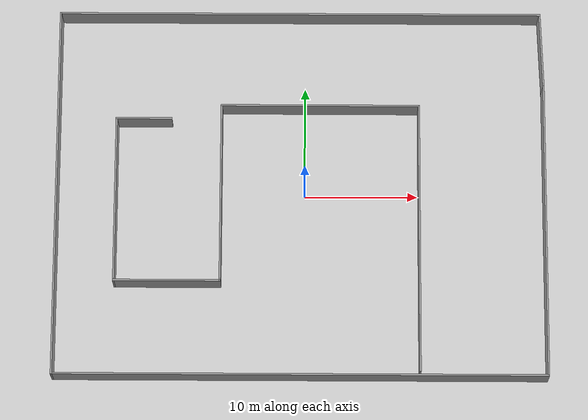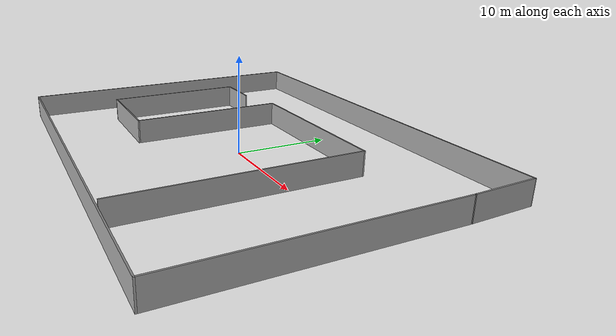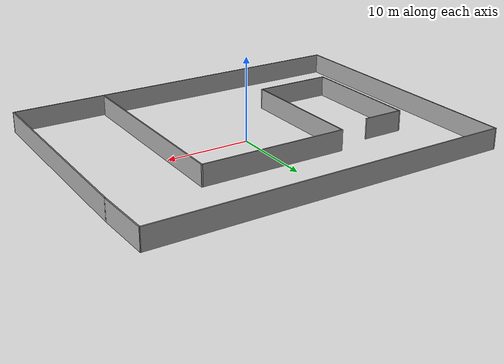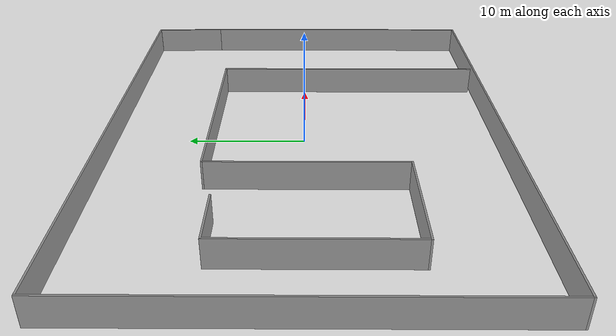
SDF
<?xml version='1.0'?>
<sdf version='1.6'>
  <model name='a5er_edit'>
    <pose frame=''>-0.366346 -0.117739 0 0 -0 0</pose>
    <link name='Wall_10'>
      <collision name='Wall_10_Collision'>
        <geometry>
          <box>
            <size>17.75 0.15 2.5</size>
          </box>
        </geometry>
        <pose frame=''>0 0 1.25 0 -0 0</pose>
      </collision>
      <visual name='Wall_10_Visual'>
        <pose frame=''>0 0 1.25 0 -0 0</pose>
        <geometry>
          <box>
            <size>17.75 0.15 2.5</size>
          </box>
        </geometry>
        <material>
          <script>
            <uri>file://media/materials/scripts/gazebo.material</uri>
            <name>Gazebo/Grey</name>
          </script>
          <ambient>1 1 1 1</ambient>
        </material>
        <meta>
          <layer>0</layer>
        </meta>
      </visual>
      <pose frame=''>1.7121 7.93096 0 0 -0 3.14159</pose>
    </link>
    <link name='Wall_11'>
      <collision name='Wall_11_Collision'>
        <geometry>
          <box>
            <size>16.25 0.15 2.5</size>
          </box>
        </geometry>
        <pose frame=''>0 0 1.25 0 -0 0</pose>
      </collision>
      <visual name='Wall_11_Visual'>
        <pose frame=''>0 0 1.25 0 -0 0</pose>
        <geometry>
          <box>
            <size>16.25 0.15 2.5</size>
          </box>
        </geometry>
        <material>
          <script>
            <uri>file://media/materials/scripts/gazebo.material</uri>
            <name>Gazebo/Grey</name>
          </script>
          <ambient>1 1 1 1</ambient>
        </material>
        <meta>
          <layer>0</layer>
        </meta>
      </visual>
      <pose frame=''>-7.0879 -0.119035 0 0 -0 -1.5708</pose>
    </link>
    <link name='Wall_12'>
      <collision name='Wall_12_Collision'>
        <geometry>
          <box>
            <size>9.5 0.15 2.5</size>
          </box>
        </geometry>
        <pose frame=''>0 0 1.25 0 -0 0</pose>
      </collision>
      <visual name='Wall_12_Visual'>
        <pose frame=''>0 0 1.25 0 -0 0</pose>
        <geometry>
          <box>
            <size>9.5 0.15 2.5</size>
          </box>
        </geometry>
        <material>
          <script>
            <uri>file://media/materials/scripts/gazebo.material</uri>
            <name>Gazebo/Grey</name>
          </script>
          <ambient>1 1 1 1</ambient>
        </material>
        <meta>
          <layer>0</layer>
        </meta>
      </visual>
      <pose frame=''>-11.7629 -8.16903 0 0 -0 3.14159</pose>
    </link>
    <link name='Wall_13'>
      <collision name='Wall_13_Collision'>
        <geometry>
          <box>
            <size>15 0.15 2.5</size>
          </box>
        </geometry>
        <pose frame=''>0 0 1.25 0 -0 0</pose>
      </collision>
      <visual name='Wall_13_Visual'>
        <pose frame=''>0 0 1.25 0 -0 0</pose>
        <geometry>
          <box>
            <size>15 0.15 2.5</size>
          </box>
        </geometry>
        <material>
          <script>
            <uri>file://media/materials/scripts/gazebo.material</uri>
            <name>Gazebo/Grey</name>
          </script>
          <ambient>1 1 1 1</ambient>
        </material>
        <meta>
          <layer>0</layer>
        </meta>
      </visual>
      <pose frame=''>-16.4379 -0.744035 0 0 -0 1.5708</pose>
    </link>
    <link name='Wall_14'>
      <collision name='Wall_14_Collision'>
        <geometry>
          <box>
            <size>5 0.15 2.5</size>
          </box>
        </geometry>
        <pose frame=''>0 0 1.25 0 -0 0</pose>
      </collision>
      <visual name='Wall_14_Visual'>
        <pose frame=''>0 0 1.25 0 -0 0</pose>
        <geometry>
          <box>
            <size>5 0.15 2.5</size>
          </box>
        </geometry>
        <material>
          <script>
            <uri>file://media/materials/scripts/gazebo.material</uri>
            <name>Gazebo/Grey</name>
          </script>
          <ambient>1 1 1 1</ambient>
        </material>
        <meta>
          <layer>0</layer>
        </meta>
      </visual>
      <pose frame=''>-14.0129 6.68096 0 0 -0 0</pose>
    </link>
    <link name='Wall_2'>
      <collision name='Wall_2_Collision'>
        <geometry>
          <box>
            <size>26.5 0.15 2.5</size>
          </box>
        </geometry>
        <pose frame=''>0 0 1.25 0 -0 0</pose>
      </collision>
      <visual name='Wall_2_Visual'>
        <pose frame=''>0 0 1.25 0 -0 0</pose>
        <geometry>
          <box>
            <size>26.5 0.15 2.5</size>
          </box>
        </geometry>
        <material>
          <script>
            <uri>file://media/materials/scripts/gazebo.material</uri>
            <name>Gazebo/Grey</name>
          </script>
          <ambient>1 1 1 1</ambient>
        </material>
        <meta>
          <layer>0</layer>
        </meta>
      </visual>
      <pose frame=''>21.6736 -3.37636 0 0 -0 -1.5708</pose>
    </link>
    <link name='Wall_3'>
      <collision name='Wall_3_Collision'>
        <geometry>
          <box>
            <size>43.5 0.15 2.5</size>
          </box>
        </geometry>
        <pose frame=''>0 0 1.25 0 -0 0</pose>
      </collision>
      <visual name='Wall_3_Visual'>
        <pose frame=''>0 0 1.25 0 -0 0</pose>
        <geometry>
          <box>
            <size>43.5 0.15 2.5</size>
          </box>
        </geometry>
        <material>
          <script>
            <uri>file://media/materials/scripts/gazebo.material</uri>
            <name>Gazebo/Grey</name>
          </script>
          <ambient>1 1 1 1</ambient>
        </material>
        <meta>
          <layer>0</layer>
        </meta>
      </visual>
      <pose frame=''>-0.001361 -16.5514 0 0 -0 3.14159</pose>
    </link>
    <link name='Wall_4'>
      <collision name='Wall_4_Collision'>
        <geometry>
          <box>
            <size>33.25 0.15 2.5</size>
          </box>
        </geometry>
        <pose frame=''>0 0 1.25 0 -0 0</pose>
      </collision>
      <visual name='Wall_4_Visual'>
        <pose frame=''>0 0 1.25 0 -0 0</pose>
        <geometry>
          <box>
            <size>33.25 0.15 2.5</size>
          </box>
        </geometry>
        <material>
          <script>
            <uri>file://media/materials/scripts/gazebo.material</uri>
            <name>Gazebo/Grey</name>
          </script>
          <ambient>1 1 1 1</ambient>
        </material>
        <meta>
          <layer>0</layer>
        </meta>
      </visual>
      <pose frame=''>-21.6764 -0.001362 0 0 -0 1.5708</pose>
    </link>
    <link name='Wall_5'>
      <collision name='Wall_5_Collision'>
        <geometry>
          <box>
            <size>43.25 0.15 2.5</size>
          </box>
        </geometry>
        <pose frame=''>0 0 1.25 0 -0 0</pose>
      </collision>
      <visual name='Wall_5_Visual'>
        <pose frame=''>0 0 1.25 0 -0 0</pose>
        <geometry>
          <box>
            <size>43.25 0.15 2.5</size>
          </box>
        </geometry>
        <material>
          <script>
            <uri>file://media/materials/scripts/gazebo.material</uri>
            <name>Gazebo/Grey</name>
          </script>
          <ambient>1 1 1 1</ambient>
        </material>
        <meta>
          <layer>0</layer>
        </meta>
      </visual>
      <pose frame=''>-0.126361 16.5486 0 0 -0 0</pose>
    </link>
    <link name='Wall_6'>
      <collision name='Wall_6_Collision'>
        <geometry>
          <box>
            <size>6.90463 0.15 2.5</size>
          </box>
        </geometry>
        <pose frame=''>0 0 1.25 0 -0 0</pose>
      </collision>
      <visual name='Wall_6_Visual'>
        <pose frame=''>0 0 1.25 0 -0 0</pose>
        <geometry>
          <box>
            <size>6.90463 0.15 2.5</size>
          </box>
        </geometry>
        <material>
          <script>
            <uri>file://media/materials/scripts/gazebo.material</uri>
            <name>Gazebo/Grey</name>
          </script>
          <ambient>1 1 1 1</ambient>
        </material>
        <meta>
          <layer>0</layer>
        </meta>
      </visual>
      <pose frame=''>21.5486 13.1736 0 0 -0 -1.53378</pose>
    </link>
    <link name='Wall_9'>
      <collision name='Wall_9_Collision'>
        <geometry>
          <box>
            <size>24.25 0.15 2.5</size>
          </box>
        </geometry>
        <pose frame=''>0 0 1.25 0 -0 0</pose>
      </collision>
      <visual name='Wall_9_Visual'>
        <pose frame=''>0 0 1.25 0 -0 0</pose>
        <geometry>
          <box>
            <size>24.25 0.15 2.5</size>
          </box>
        </geometry>
        <material>
          <script>
            <uri>file://media/materials/scripts/gazebo.material</uri>
            <name>Gazebo/Grey</name>
          </script>
          <ambient>1 1 1 1</ambient>
        </material>
        <meta>
          <layer>0</layer>
        </meta>
      </visual>
      <pose frame=''>10.5121 -4.11904 0 0 -0 1.5708</pose>
    </link>
    <static>1</static>
  </model>
</sdf>
